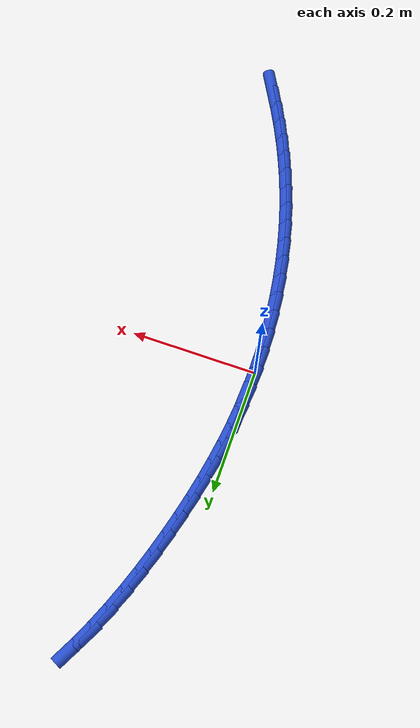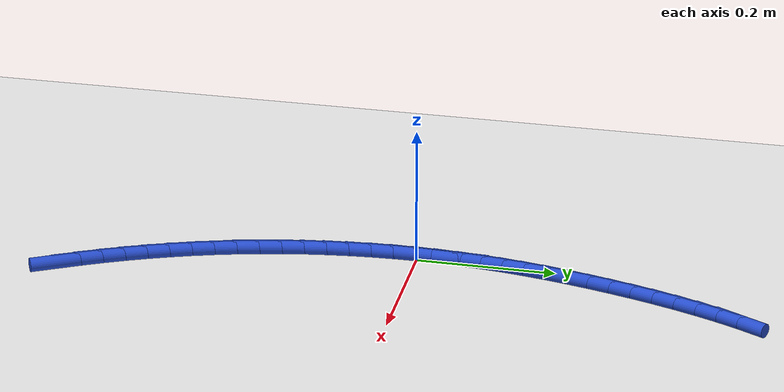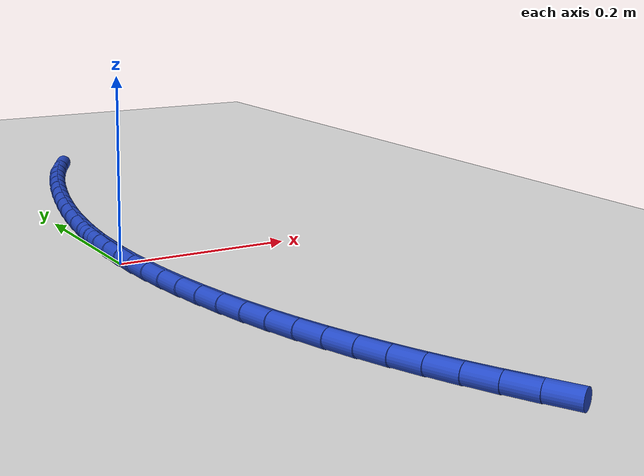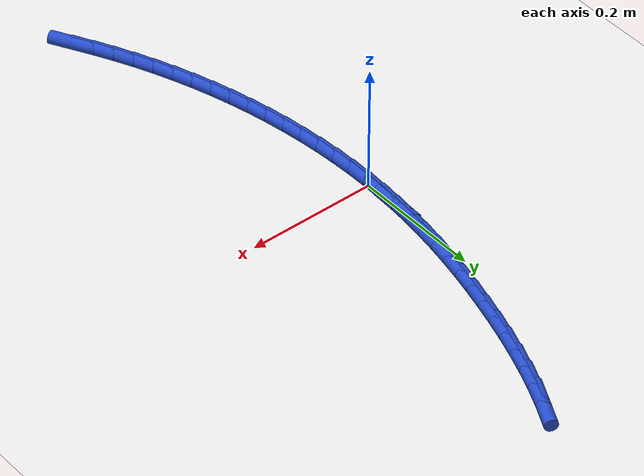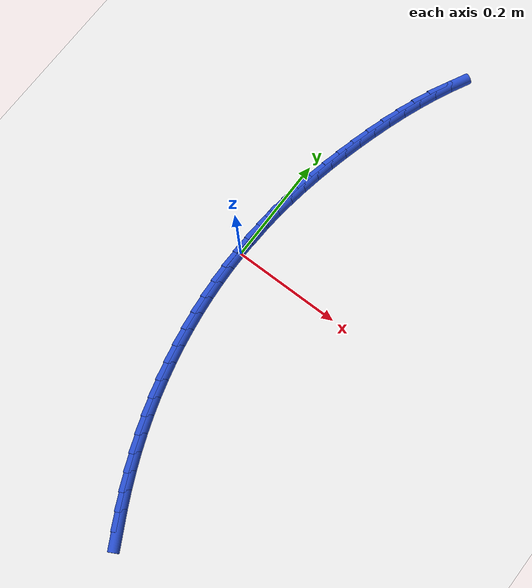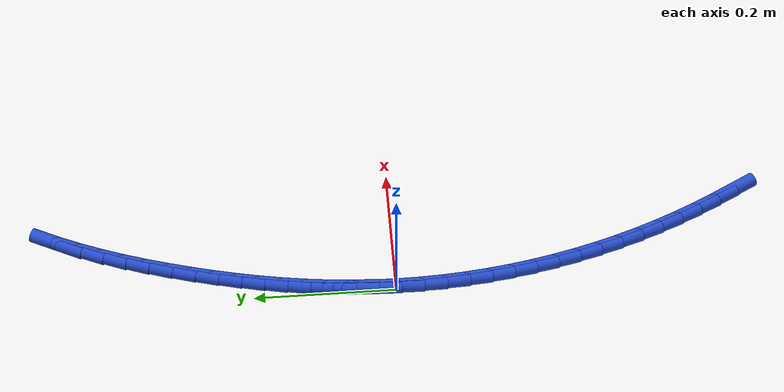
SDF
<sdf version="1.6">
 <world name="default">
  <model name="ground_plane">
   <static>1</static>
   <link name="link">
    <collision name="collision">
     <geometry><plane><normal>0 0 1</normal><size>100 100</size></plane></geometry>
     <surface><friction><ode><mu>100</mu><mu2>50</mu2></ode></friction></surface>
    </collision>
    <visual name="visual">
     <cast_shadows>0</cast_shadows>
     <geometry><plane><normal>0 0 1</normal><size>100 100</size></plane></geometry>
     <material>
      <script><uri>file://media/materials/scripts/gazebo.material</uri><name>Gazebo/WhiteGlow</name></script>
     </material>
    </visual>
   </link>
  </model>
  <model name="line">
   <link name="link_0">
    <pose>-3.8163916471489756e-17 -5.551115123125783e-17 0.01 0 1.57 1.5481134711227669</pose>
    <collision name="collision">
     <geometry><cylinder><radius>0.01</radius><length>0.08</length></cylinder></geometry>
    </collision>
    <visual name="visual">
     <material>
      <script><name>Gazebo/Blue</name><uri>file://media/materials/scripts/gazebo.material</uri></script>
     </material>
     <geometry><cylinder><radius>0.01</radius><length>0.08</length></cylinder></geometry>
    </visual>
   </link>
   <link name="link_1">
    <pose>0.0007205756367423411 0.03176196424855339 0.01 0 1.57 1.5146938980342213</pose>
    <collision name="collision">
     <geometry><cylinder><radius>0.01</radius><length>0.08</length></cylinder></geometry>
    </collision>
    <visual name="visual">
     <material>
      <script><name>Gazebo/Blue</name><uri>file://media/materials/scripts/gazebo.material</uri></script>
     </material>
     <geometry><cylinder><radius>0.01</radius><length>0.08</length></cylinder></geometry>
    </visual>
   </link>
   <link name="link_2">
    <pose>0.0024987523179921083 0.06342388576557081 0.01 0 1.57 1.4823655658957862</pose>
    <collision name="collision">
     <geometry><cylinder><radius>0.01</radius><length>0.08</length></cylinder></geometry>
    </collision>
    <visual name="visual">
     <material>
      <script><name>Gazebo/Blue</name><uri>file://media/materials/scripts/gazebo.material</uri></script>
     </material>
     <geometry><cylinder><radius>0.01</radius><length>0.08</length></cylinder></geometry>
    </visual>
   </link>
   <link name="link_3">
    <pose>0.005299455204483686 0.09501242521603667 0.01 0 1.57 1.4512693870335382</pose>
    <collision name="collision">
     <geometry><cylinder><radius>0.01</radius><length>0.08</length></cylinder></geometry>
    </collision>
    <visual name="visual">
     <material>
      <script><name>Gazebo/Blue</name><uri>file://media/materials/scripts/gazebo.material</uri></script>
     </material>
     <geometry><cylinder><radius>0.01</radius><length>0.08</length></cylinder></geometry>
    </visual>
   </link>
   <link name="link_4">
    <pose>0.0090876094569515 0.12655424326493545 0.01 0 1.57 1.4215257989167212</pose>
    <collision name="collision">
     <geometry><cylinder><radius>0.01</radius><length>0.08</length></cylinder></geometry>
    </collision>
    <visual name="visual">
     <material>
      <script><name>Gazebo/Blue</name><uri>file://media/materials/scripts/gazebo.material</uri></script>
     </material>
     <geometry><cylinder><radius>0.01</radius><length>0.08</length></cylinder></geometry>
    </visual>
   </link>
   <link name="link_5">
    <pose>0.013828140236129967 0.15807600057725166 0.01 0 1.57 1.3932340660051605</pose>
    <collision name="collision">
     <geometry><cylinder><radius>0.01</radius><length>0.08</length></cylinder></geometry>
    </collision>
    <visual name="visual">
     <material>
      <script><name>Gazebo/Blue</name><uri>file://media/materials/scripts/gazebo.material</uri></script>
     </material>
     <geometry><cylinder><radius>0.01</radius><length>0.08</length></cylinder></geometry>
    </visual>
   </link>
   <link name="link_6">
    <pose>0.019485972702753523 0.1896043578179698 0.01 0 1.57 1.3664724228733238</pose>
    <collision name="collision">
     <geometry><cylinder><radius>0.01</radius><length>0.08</length></cylinder></geometry>
    </collision>
    <visual name="visual">
     <material>
      <script><name>Gazebo/Blue</name><uri>file://media/materials/scripts/gazebo.material</uri></script>
     </material>
     <geometry><cylinder><radius>0.01</radius><length>0.08</length></cylinder></geometry>
    </visual>
   </link>
   <link name="link_7">
    <pose>0.026026032017556586 0.22116597565207435 0.01 0 1.57 1.3412989221408662</pose>
    <collision name="collision">
     <geometry><cylinder><radius>0.01</radius><length>0.08</length></cylinder></geometry>
    </collision>
    <visual name="visual">
     <material>
      <script><name>Gazebo/Blue</name><uri>file://media/materials/scripts/gazebo.material</uri></script>
     </material>
     <geometry><cylinder><radius>0.01</radius><length>0.08</length></cylinder></geometry>
    </visual>
   </link>
   <link name="link_8">
    <pose>0.033413243341273574 0.25278751474454975 0.01 0 1.57 1.3177528258443836</pose>
    <collision name="collision">
     <geometry><cylinder><radius>0.01</radius><length>0.08</length></cylinder></geometry>
    </collision>
    <visual name="visual">
     <material>
      <script><name>Gazebo/Blue</name><uri>file://media/materials/scripts/gazebo.material</uri></script>
     </material>
     <geometry><cylinder><radius>0.01</radius><length>0.08</length></cylinder></geometry>
    </visual>
   </link>
   <link name="link_9">
    <pose>0.04161253183463892 0.28449563576038056 0.01 0 1.57 1.2956110362407625</pose>
    <collision name="collision">
     <geometry><cylinder><radius>0.01</radius><length>0.08</length></cylinder></geometry>
    </collision>
    <visual name="visual">
     <material>
      <script><name>Gazebo/Blue</name><uri>file://media/materials/scripts/gazebo.material</uri></script>
     </material>
     <geometry><cylinder><radius>0.01</radius><length>0.08</length></cylinder></geometry>
    </visual>
   </link>
   <link name="link_10">
    <pose>0.05059449479467364 0.31630723613009476 0.01 0 1.57 1.2720928596357388</pose>
    <collision name="collision">
     <geometry><cylinder><radius>0.01</radius><length>0.08</length></cylinder></geometry>
    </collision>
    <visual name="visual">
     <material>
      <script><name>Gazebo/Blue</name><uri>file://media/materials/scripts/gazebo.material</uri></script>
     </material>
     <geometry><cylinder><radius>0.01</radius><length>0.08</length></cylinder></geometry>
    </visual>
   </link>
   <link name="link_11">
    <pose>0.06039321889146027 0.3481299314187334 0.01 0 1.57 1.2453058232664884</pose>
    <collision name="collision">
     <geometry><cylinder><radius>0.01</radius><length>0.08</length></cylinder></geometry>
    </collision>
    <visual name="visual">
     <material>
      <script><name>Gazebo/Blue</name><uri>file://media/materials/scripts/gazebo.material</uri></script>
     </material>
     <geometry><cylinder><radius>0.01</radius><length>0.08</length></cylinder></geometry>
    </visual>
   </link>
   <link name="link_12">
    <pose>0.07108261791682259 0.3798027842674231 0.01 0 1.57 1.2149860125835699</pose>
    <collision name="collision">
     <geometry><cylinder><radius>0.01</radius><length>0.08</length></cylinder></geometry>
    </collision>
    <visual name="visual">
     <material>
      <script><name>Gazebo/Blue</name><uri>file://media/materials/scripts/gazebo.material</uri></script>
     </material>
     <geometry><cylinder><radius>0.01</radius><length>0.08</length></cylinder></geometry>
    </visual>
   </link>
   <link name="link_13">
    <pose>0.08273722032045311 0.4111637993298617 0.01 0 1.57 1.1808515463506217</pose>
    <collision name="collision">
     <geometry><cylinder><radius>0.01</radius><length>0.08</length></cylinder></geometry>
    </collision>
    <visual name="visual">
     <material>
      <script><name>Gazebo/Blue</name><uri>file://media/materials/scripts/gazebo.material</uri></script>
     </material>
     <geometry><cylinder><radius>0.01</radius><length>0.08</length></cylinder></geometry>
    </visual>
   </link>
   <link name="link_14">
    <pose>0.09543155455204444 0.4420509812597479 0.01 0 1.57 1.1425815779828539</pose>
    <collision name="collision">
     <geometry><cylinder><radius>0.01</radius><length>0.08</length></cylinder></geometry>
    </collision>
    <visual name="visual">
     <material>
      <script><name>Gazebo/Blue</name><uri>file://media/materials/scripts/gazebo.material</uri></script>
     </material>
     <geometry><cylinder><radius>0.01</radius><length>0.08</length></cylinder></geometry>
    </visual>
   </link>
   <link name="link_15">
    <pose>0.10924014906128902 0.4723023347107795 0.01 0 1.57 1.0998253803422684</pose>
    <collision name="collision">
     <geometry><cylinder><radius>0.01</radius><length>0.08</length></cylinder></geometry>
    </collision>
    <visual name="visual">
     <material>
      <script><name>Gazebo/Blue</name><uri>file://media/materials/scripts/gazebo.material</uri></script>
     </material>
     <geometry><cylinder><radius>0.01</radius><length>0.08</length></cylinder></geometry>
    </visual>
   </link>
   <link name="link_194">
    <pose>0.1293528062891495 -0.49055563419519777 0.01 0 1.57 -1.07462474652904</pose>
    <collision name="collision">
     <geometry><cylinder><radius>0.01</radius><length>0.08</length></cylinder></geometry>
    </collision>
    <visual name="visual">
     <material>
      <script><name>Gazebo/Blue</name><uri>file://media/materials/scripts/gazebo.material</uri></script>
     </material>
     <geometry><cylinder><radius>0.01</radius><length>0.08</length></cylinder></geometry>
    </visual>
   </link>
   <link name="link_195">
    <pose>0.11407679703776502 -0.46233684886744697 0.01 0 1.57 -1.1041658148067777</pose>
    <collision name="collision">
     <geometry><cylinder><radius>0.01</radius><length>0.08</length></cylinder></geometry>
    </collision>
    <visual name="visual">
     <material>
      <script><name>Gazebo/Blue</name><uri>file://media/materials/scripts/gazebo.material</uri></script>
     </material>
     <geometry><cylinder><radius>0.01</radius><length>0.08</length></cylinder></geometry>
    </visual>
   </link>
   <link name="link_196">
    <pose>0.09966508234021537 -0.43372708912847857 0.01 0 1.57 -1.1344302982435612</pose>
    <collision name="collision">
     <geometry><cylinder><radius>0.01</radius><length>0.08</length></cylinder></geometry>
    </collision>
    <visual name="visual">
     <material>
      <script><name>Gazebo/Blue</name><uri>file://media/materials/scripts/gazebo.material</uri></script>
     </material>
     <geometry><cylinder><radius>0.01</radius><length>0.08</length></cylinder></geometry>
    </visual>
   </link>
   <link name="link_197">
    <pose>0.08614112124284433 -0.4047274137006715 0.01 0 1.57 -1.1653968915035093</pose>
    <collision name="collision">
     <geometry><cylinder><radius>0.01</radius><length>0.08</length></cylinder></geometry>
    </collision>
    <visual name="visual">
     <material>
      <script><name>Gazebo/Blue</name><uri>file://media/materials/scripts/gazebo.material</uri></script>
     </material>
     <geometry><cylinder><radius>0.01</radius><length>0.08</length></cylinder></geometry>
    </visual>
   </link>
   <link name="link_198">
    <pose>0.07352837279199462 -0.37533888130640264 0.01 0 1.57 -1.1970379446050112</pose>
    <collision name="collision">
     <geometry><cylinder><radius>0.01</radius><length>0.08</length></cylinder></geometry>
    </collision>
    <visual name="visual">
     <material>
      <script><name>Gazebo/Blue</name><uri>file://media/materials/scripts/gazebo.material</uri></script>
     </material>
     <geometry><cylinder><radius>0.01</radius><length>0.08</length></cylinder></geometry>
    </visual>
   </link>
   <link name="link_199">
    <pose>0.061850296034009454 -0.34556255066804964 0.01 0 1.57 -1.2293192085874185</pose>
    <collision name="collision">
     <geometry><cylinder><radius>0.01</radius><length>0.08</length></cylinder></geometry>
    </collision>
    <visual name="visual">
     <material>
      <script><name>Gazebo/Blue</name><uri>file://media/materials/scripts/gazebo.material</uri></script>
     </material>
     <geometry><cylinder><radius>0.01</radius><length>0.08</length></cylinder></geometry>
    </visual>
   </link>
   <link name="link_200">
    <pose>0.0511303500152319 -0.3153994805079898 0.01 0 1.57 -1.2621946284591885</pose>
    <collision name="collision">
     <geometry><cylinder><radius>0.01</radius><length>0.08</length></cylinder></geometry>
    </collision>
    <visual name="visual">
     <material>
      <script><name>Gazebo/Blue</name><uri>file://media/materials/scripts/gazebo.material</uri></script>
     </material>
     <geometry><cylinder><radius>0.01</radius><length>0.08</length></cylinder></geometry>
    </visual>
   </link>
   <link name="link_201">
    <pose>0.04139191948968066 -0.28485103139755485 0.01 0 1.57 -1.2953076992031907</pose>
    <collision name="collision">
     <geometry><cylinder><radius>0.01</radius><length>0.08</length></cylinder></geometry>
    </collision>
    <visual name="visual">
     <material>
      <script><name>Gazebo/Blue</name><uri>file://media/materials/scripts/gazebo.material</uri></script>
     </material>
     <geometry><cylinder><radius>0.01</radius><length>0.08</length></cylinder></geometry>
    </visual>
   </link>
   <link name="link_202">
    <pose>0.03265357539607968 -0.2539381223903594 0.01 0 1.57 -1.328198966098642</pose>
    <collision name="collision">
     <geometry><cylinder><radius>0.01</radius><length>0.08</length></cylinder></geometry>
    </collision>
    <visual name="visual">
     <material>
      <script><name>Gazebo/Blue</name><uri>file://media/materials/scripts/gazebo.material</uri></script>
     </material>
     <geometry><cylinder><radius>0.01</radius><length>0.08</length></cylinder></geometry>
    </visual>
   </link>
   <link name="link_203">
    <pose>0.02492621485436559 -0.22271285118723266 0.01 0 1.57 -1.3609222647568808</pose>
    <collision name="collision">
     <geometry><cylinder><radius>0.01</radius><length>0.08</length></cylinder></geometry>
    </collision>
    <visual name="visual">
     <material>
      <script><name>Gazebo/Blue</name><uri>file://media/materials/scripts/gazebo.material</uri></script>
     </material>
     <geometry><cylinder><radius>0.01</radius><length>0.08</length></cylinder></geometry>
    </visual>
   </link>
   <link name="link_204">
    <pose>0.01822004940602398 -0.19123010098723045 0.01 0 1.57 -1.3935779301444164</pose>
    <collision name="collision">
     <geometry><cylinder><radius>0.01</radius><length>0.08</length></cylinder></geometry>
    </collision>
    <visual name="visual">
     <material>
      <script><name>Gazebo/Blue</name><uri>file://media/materials/scripts/gazebo.material</uri></script>
     </material>
     <geometry><cylinder><radius>0.01</radius><length>0.08</length></cylinder></geometry>
    </visual>
   </link>
   <link name="link_205">
    <pose>0.012545290592540613 -0.15954475498940932 0.01 0 1.57 -1.426266226834229</pose>
    <collision name="collision">
     <geometry><cylinder><radius>0.01</radius><length>0.08</length></cylinder></geometry>
    </collision>
    <visual name="visual">
     <material>
      <script><name>Gazebo/Blue</name><uri>file://media/materials/scripts/gazebo.material</uri></script>
     </material>
     <geometry><cylinder><radius>0.01</radius><length>0.08</length></cylinder></geometry>
    </visual>
   </link>
   <link name="link_206">
    <pose>0.007912149955401281 -0.12771169639282587 0.01 0 1.57 -1.459087558269399</pose>
    <collision name="collision">
     <geometry><cylinder><radius>0.01</radius><length>0.08</length></cylinder></geometry>
    </collision>
    <visual name="visual">
     <material>
      <script><name>Gazebo/Blue</name><uri>file://media/materials/scripts/gazebo.material</uri></script>
     </material>
     <geometry><cylinder><radius>0.01</radius><length>0.08</length></cylinder></geometry>
    </visual>
   </link>
   <link name="link_207">
    <pose>0.004330839036091765 -0.09578580839653666 0.01 0 1.57 -1.492142669895967</pose>
    <collision name="collision">
     <geometry><cylinder><radius>0.01</radius><length>0.08</length></cylinder></geometry>
    </collision>
    <visual name="visual">
     <material>
      <script><name>Gazebo/Blue</name><uri>file://media/materials/scripts/gazebo.material</uri></script>
     </material>
     <geometry><cylinder><radius>0.01</radius><length>0.08</length></cylinder></geometry>
    </visual>
   </link>
   <link name="link_208">
    <pose>0.0018115693760978524 -0.06382197419959829 0.01 0 1.57 -1.5255328225965576</pose>
    <collision name="collision">
     <geometry><cylinder><radius>0.01</radius><length>0.08</length></cylinder></geometry>
    </collision>
    <visual name="visual">
     <material>
      <script><name>Gazebo/Blue</name><uri>file://media/materials/scripts/gazebo.material</uri></script>
     </material>
     <geometry><cylinder><radius>0.01</radius><length>0.08</length></cylinder></geometry>
    </visual>
   </link>
   <link name="link_209">
    <pose>0.00036455251690530564 -0.03187507700106656 0.01 0 1.57 -1.559359911338214</pose>
    <collision name="collision">
     <geometry><cylinder><radius>0.01</radius><length>0.08</length></cylinder></geometry>
    </collision>
    <visual name="visual">
     <material>
      <script><name>Gazebo/Blue</name><uri>file://media/materials/scripts/gazebo.material</uri></script>
     </material>
     <geometry><cylinder><radius>0.01</radius><length>0.08</length></cylinder></geometry>
    </visual>
   </link>
   <link name="link_210">
    <pose>-2.862293735361732e-17 -2.706168622523819e-16 0.01 0 1.57 1.5478661522471047</pose>
    <collision name="collision">
     <geometry><cylinder><radius>0.01</radius><length>0.08</length></cylinder></geometry>
    </collision>
    <visual name="visual">
     <material>
      <script><name>Gazebo/Blue</name><uri>file://media/materials/scripts/gazebo.material</uri></script>
     </material>
     <geometry><cylinder><radius>0.01</radius><length>0.08</length></cylinder></geometry>
    </visual>
   </link>
   <link name="link_211">
    <pose>0.0007281233668675656 0.03174837360454621 0.01 0 1.57 1.5128569031216474</pose>
    <collision name="collision">
     <geometry><cylinder><radius>0.01</radius><length>0.08</length></cylinder></geometry>
    </collision>
    <visual name="visual">
     <material>
      <script><name>Gazebo/Blue</name><uri>file://media/materials/scripts/gazebo.material</uri></script>
     </material>
     <geometry><cylinder><radius>0.01</radius><length>0.08</length></cylinder></geometry>
    </visual>
   </link>
   <link name="link_212">
    <pose>0.00255913415899401 0.06331516061351705 0.01 0 1.57 1.5303993368050688</pose>
    <collision name="collision">
     <geometry><cylinder><radius>0.01</radius><length>0.08</length></cylinder></geometry>
    </collision>
    <visual name="visual">
     <material>
      <script><name>Gazebo/Blue</name><uri>file://media/materials/scripts/gazebo.material</uri></script>
     </material>
     <geometry><cylinder><radius>0.01</radius><length>0.08</length></cylinder></geometry>
    </visual>
   </link>
  </model>
 </world>
</sdf>
